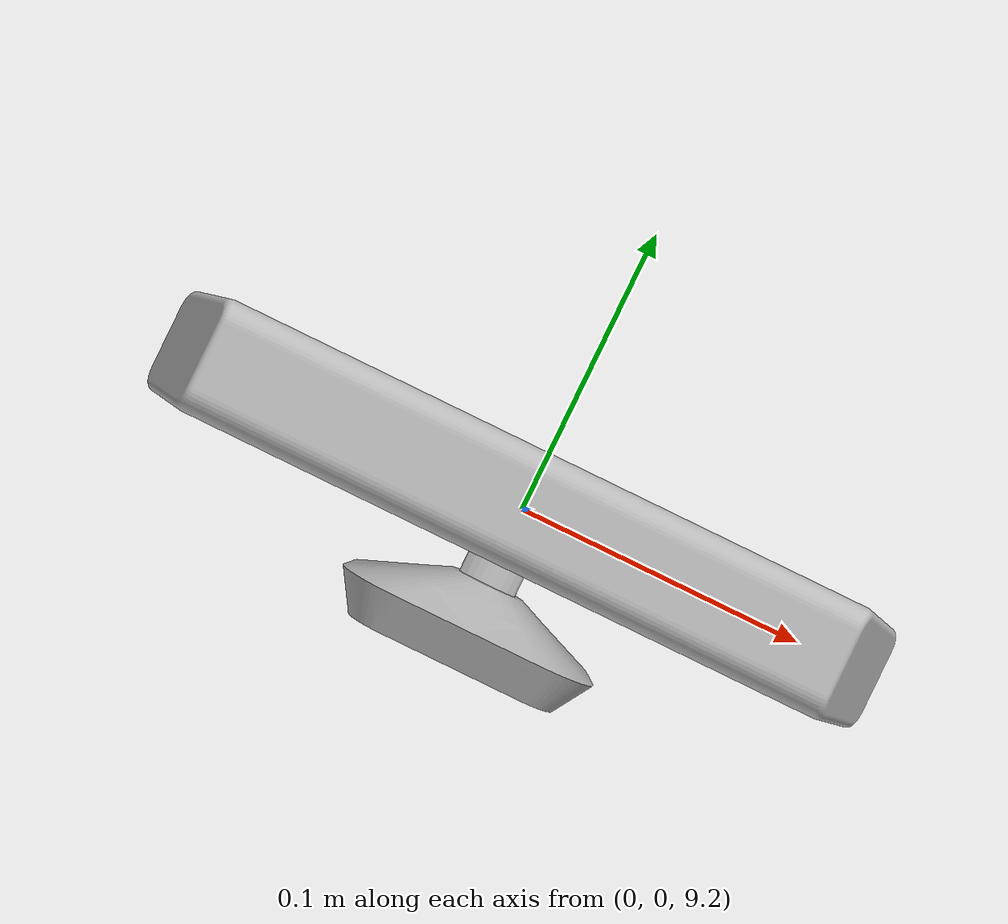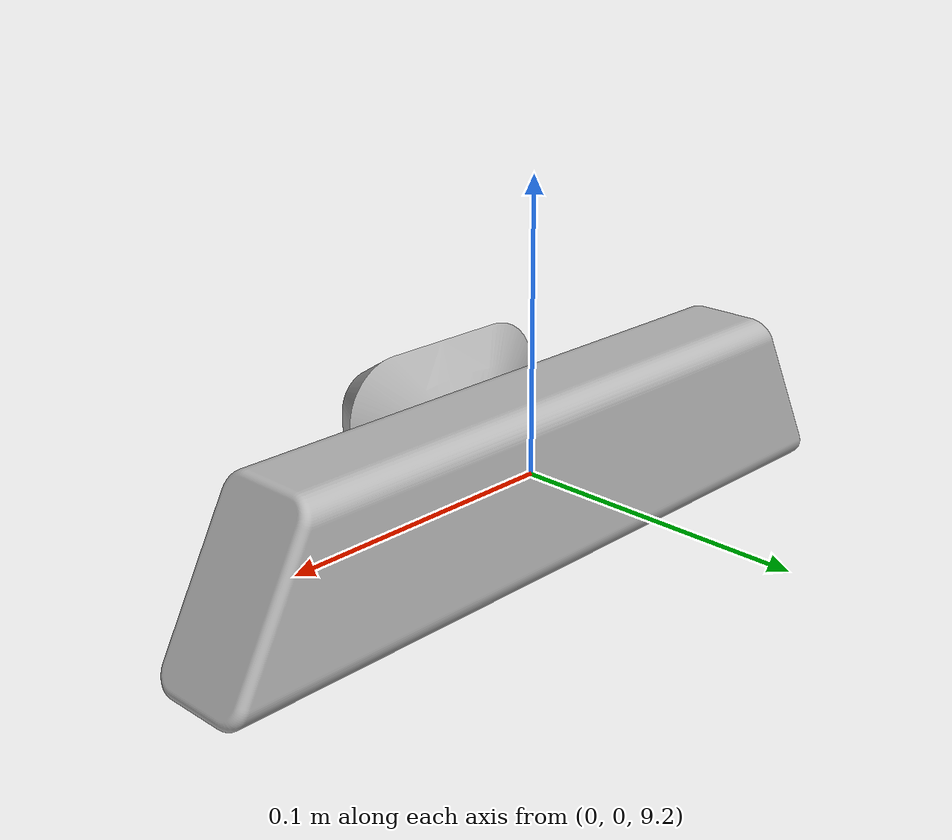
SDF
<?xml version="1.0" ?>
<sdf version="1.5">
  <model name="rgb_cam">
    <static>true</static>
    <pose>0 0 9.17 -1.5708 1.5708 0</pose>
    <link name="rgb_cam">
      <inertial>
        <mass>0.1</mass>
      </inertial>

      <collision name="collision">
        <geometry>
          <box>
            <size>0.073000 0.276000 0.072000</size>
          </box>
        </geometry>
      </collision>
      <visual name="visual">
        <geometry>
          <mesh>
            <uri>model://kinect/meshes/kinect.dae</uri>
          </mesh>
        </geometry>
      </visual>

      <sensor type="camera" name="sky_camera">
        <update_rate>30.0</update_rate>
        <camera name="rgb_cam">
          <horizontal_fov>1</horizontal_fov>
          <image>
            <width>640</width>
            <height>640</height>
            <format>R8G8B8</format>
          </image>
          <clip>
            <near>0.02</near>
            <far>300</far>
          </clip>
          <noise>
            <type>gaussian</type>
            <!-- Noise is sampled independently per pixel on each frame.
                 That pixel's noise value is added to each of its color
                 channels, which at that point lie in the range [0,1]. -->
            <mean>0.0</mean>
            <stddev>0.007</stddev>
          </noise>
        </camera>
        <plugin name="camera_controller" filename="libgazebo_ros_camera.so">
          <alwaysOn>true</alwaysOn>
          <updateRate>0.0</updateRate>
          <cameraName>sky_camera</cameraName>
          <imageTopicName>image_raw</imageTopicName>
          <cameraInfoTopicName>camera_info</cameraInfoTopicName>
          <frameName>camera_link</frameName>
          <hackBaseline>0.07</hackBaseline>
          <distortionK1>0.0</distortionK1>
          <distortionK2>0.0</distortionK2>
          <distortionK3>0.0</distortionK3>
          <distortionT1>0.0</distortionT1>
          <distortionT2>0.0</distortionT2>
        </plugin>
    </sensor>
    </link>
  </model>
</sdf>
